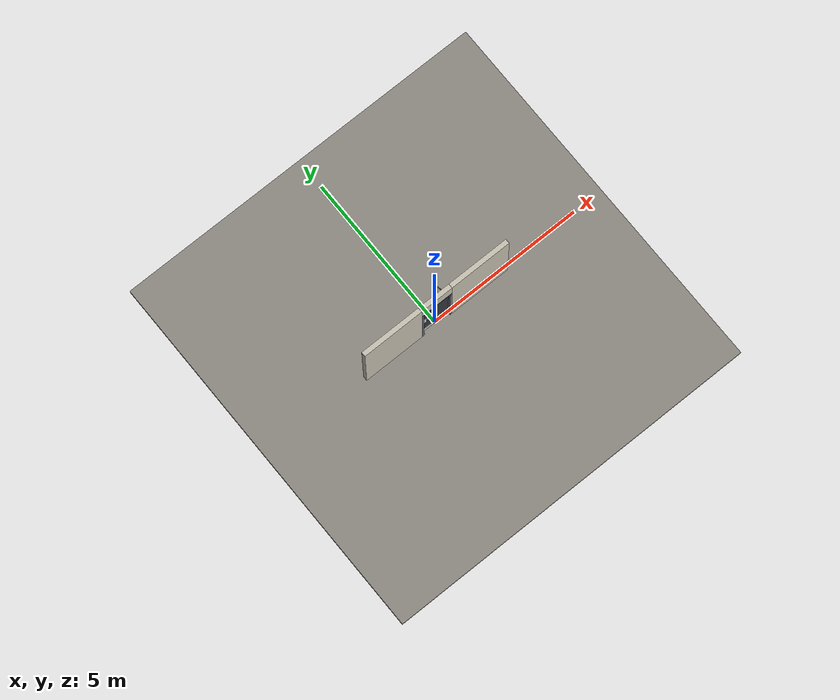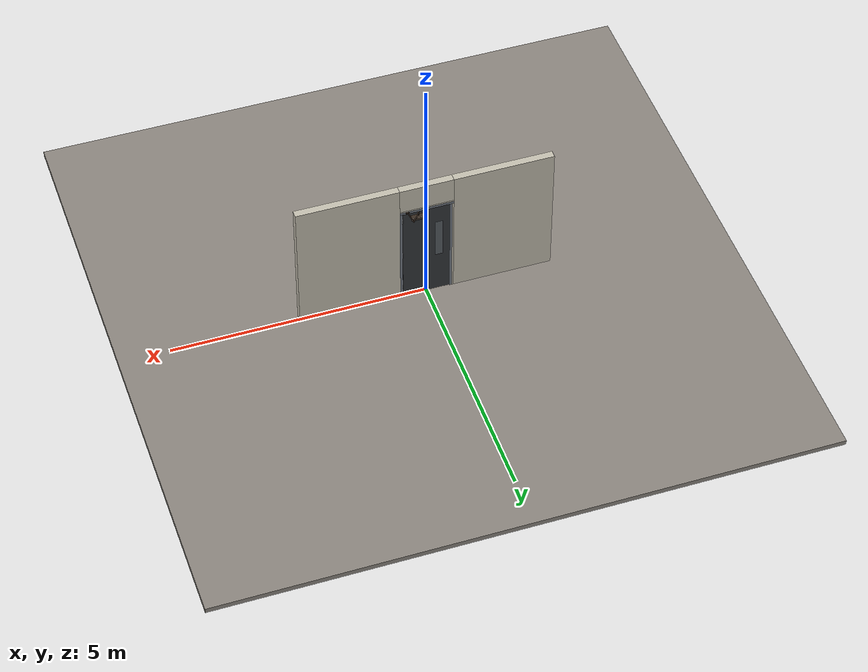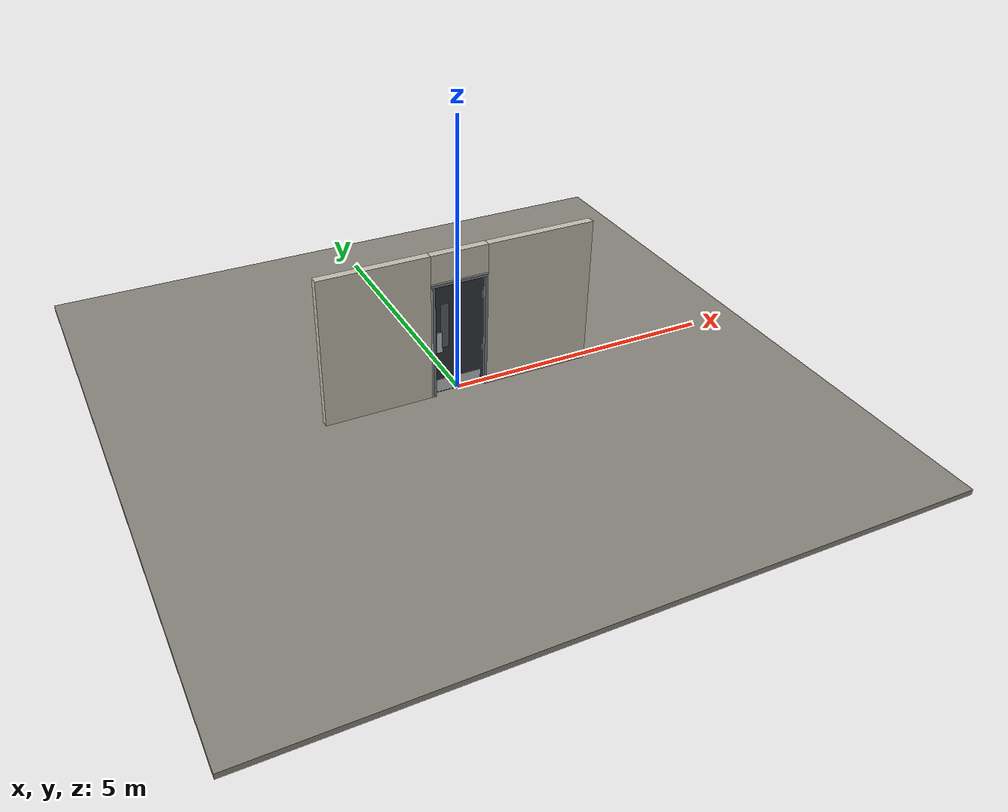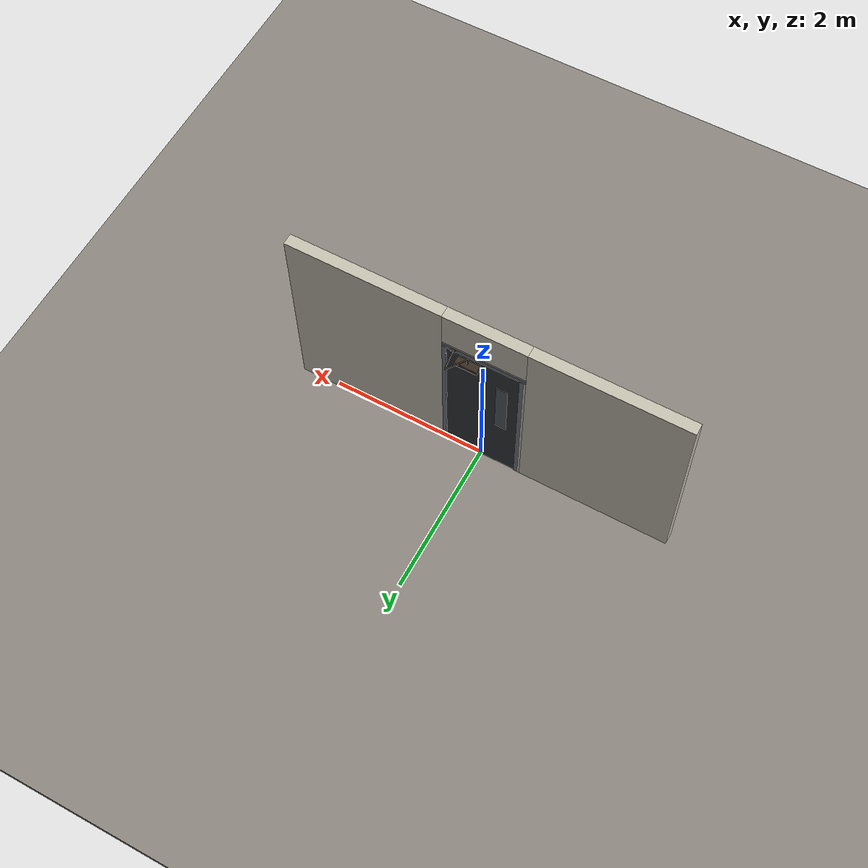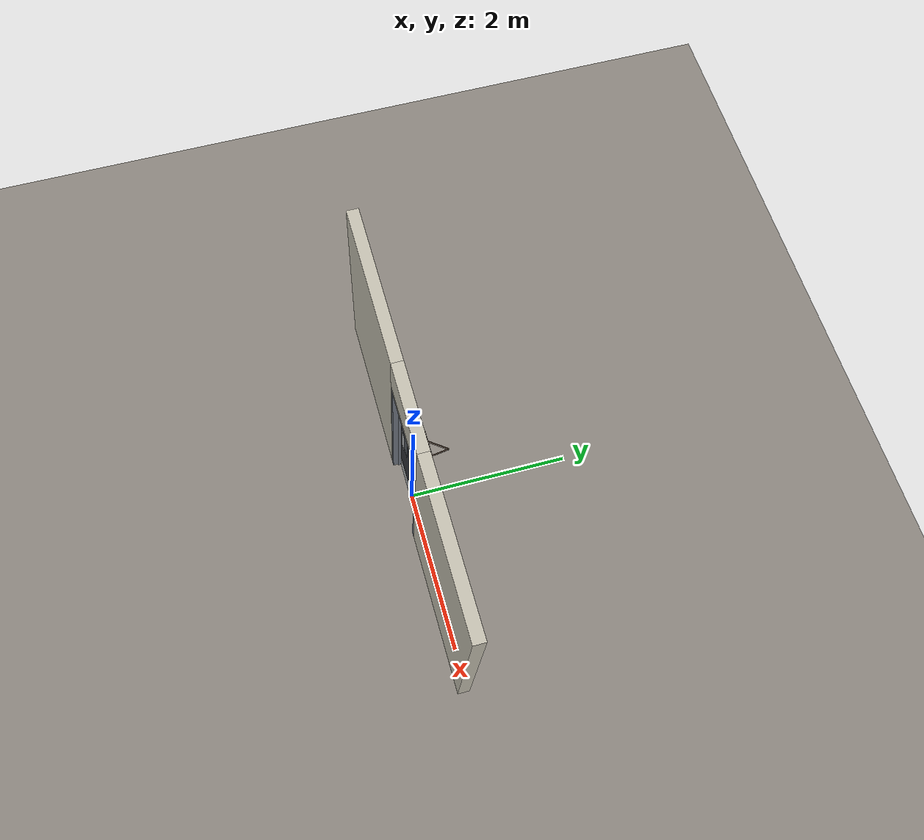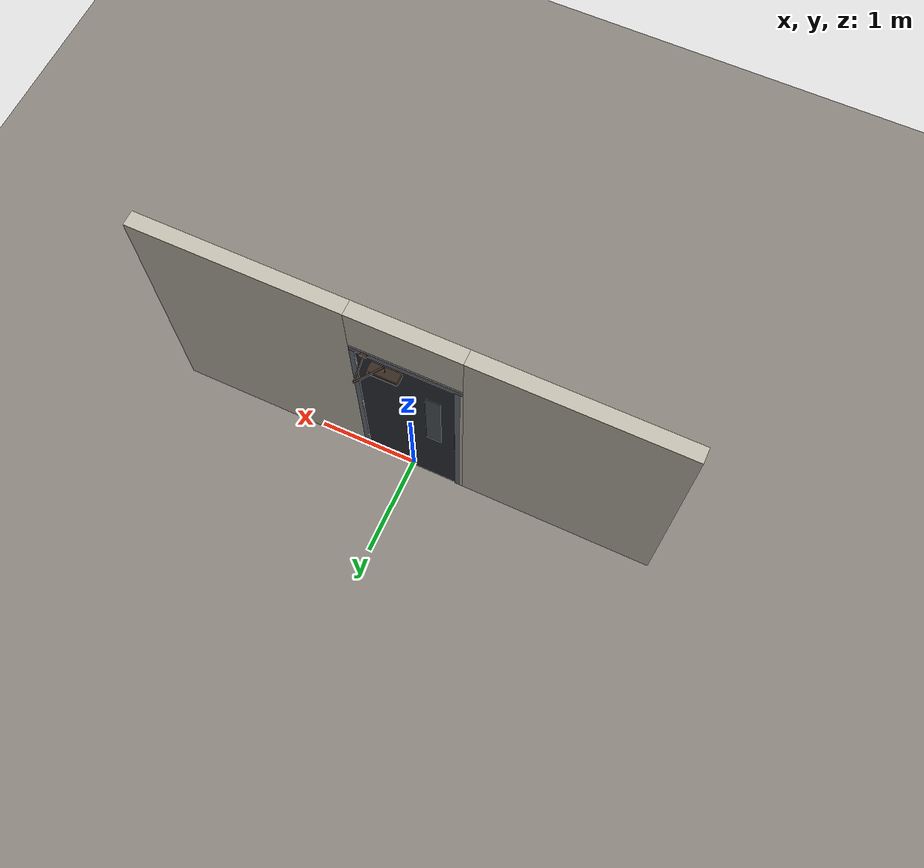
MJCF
<?xml version="1.0" ?>
<mujoco model="db0737_swing_single_full">
  <compiler angle="radian" meshdir="../../hardware" texturedir="../../textures" autolimits="true" inertiafromgeom="false"/>
  <option timestep="0.002" integrator="implicitfast" cone="elliptic" impratio="10" noslip_iterations="3">
    <flag multiccd="enable"/>
  </option>
  <size memory="16M"/>
  <default>
    <geom condim="4" solref="0.005 1" solimp="0.95 0.99 0.001"/>
    <joint solreflimit="0.005 1" solimplimit="0.95 0.99 0.001"/>
    <tendon solreflimit="0.005 1"/>
    <equality solref="0.002 1"/>
  </default>
  <visual>
    <headlight ambient="0.4 0.4 0.4" diffuse="0.7 0.7 0.7" specular="0.2 0.2 0.2"/>
    <quality shadowsize="4096"/>
    <map znear="0.01" zfar="60"/>
  </visual>
  <asset>
    <mesh name="closer_body_fdc4667657" file="closer_body_fdc4667657.obj"/>
    <mesh name="hinge_e22b26c0c1" file="hinge_e22b26c0c1.obj"/>
    <mesh name="hinge_jamb_e1d088f8dc" file="hinge_jamb_e1d088f8dc.obj"/>
    <material name="mat_floor" rgba="0.55 0.53 0.5 1" specular="0.2" shininess="0.15" reflectance="0"/>
    <material name="mat_wall" rgba="0.78 0.76 0.7 1" specular="0.2" shininess="0.1" reflectance="0"/>
    <material name="mat_leaf" rgba="0.2 0.21 0.23 1" specular="0.2" shininess="0.45" reflectance="0"/>
    <material name="mat_glass" rgba="0.85 0.92 0.95 0.25" specular="0.2" shininess="0.95" reflectance="0.1"/>
    <material name="mat_hinge" rgba="0.65 0.66 0.68 1" specular="0.74" shininess="0.5" reflectance="0.36"/>
    <material name="mat_op_stainless" rgba="0.75 0.76 0.77 1" specular="0.8" shininess="0.65" reflectance="0.4"/>
    <material name="mat_frame" rgba="0.45 0.48 0.52 1" specular="0.32" shininess="0.6" reflectance="0.08"/>
    <material name="mat_seal" rgba="0.1 0.1 0.1 1" specular="0.2" shininess="0.1" reflectance="0"/>
    <material name="mat_closer" rgba="0.22 0.17 0.13 1" specular="0.8" shininess="0.6" reflectance="0.4"/>
    <material name="mat_kick" rgba="0.75 0.76 0.77 1" specular="0.8" shininess="0.65" reflectance="0.4"/>
    <texture name="skybox" type="skybox" builtin="gradient" rgb1="0.6 0.7 0.85" rgb2="0.9 0.92 0.95" width="256" height="256"/>
  </asset>
  <worldbody>
    <light name="sun" pos="1.5 -2.5 4" dir="-0.3 0.5 -0.8" directional="true" diffuse="0.8 0.8 0.8" specular="0.3 0.3 0.3" castshadow="true"/>
    <light name="fill" pos="-1.5 2.5 3" dir="0.3 -0.5 -0.7" directional="true" diffuse="0.35 0.35 0.4" castshadow="false"/>
    <camera name="robot_view" pos="0 -2.681312 1.812087" xyaxes="1 0 0 0 0.26963 0.962964" fovy="52"/>
    <camera name="far_view" pos="0 2.594313 1.812087" xyaxes="-1 0 0 0 -0.26963 0.962964" fovy="52"/>
    <camera name="iso" pos="-2.004737 -2.259262 2.234138" xyaxes="0.741536 -0.670913 0 0.242917 0.268487 0.932151" fovy="46"/>
    <camera name="detail_handle" pos="-0.1735 -0.8435 1.296" xyaxes="0.97561 0.219512 0 -0.070934 0.315262 0.94635" fovy="38"/>
    <geom name="floor" type="box" size="6 6 0.05" pos="0 0 -0.05" material="mat_floor" group="0" contype="1" conaffinity="1" friction="0.8 0.005 0.0001" density="2400"/>
    <geom name="wall_left" type="box" size="0.97975 0.0725 1.3735" pos="-1.52025 -0.0435 1.3735" material="mat_wall" group="0" contype="1" conaffinity="1" friction="0.6 0.005 0.0001" density="800"/>
    <geom name="wall_right" type="box" size="0.99475 0.0725 1.3735" pos="1.50525 -0.0435 1.3735" material="mat_wall" group="0" contype="1" conaffinity="1" friction="0.6 0.005 0.0001" density="800"/>
    <geom name="wall_header" type="box" size="0.5255 0.0725 0.26" pos="-0.015 -0.0435 2.487" material="mat_wall" group="0" contype="1" conaffinity="1" friction="0.6 0.005 0.0001" density="800"/>
    <geom name="hinge_0_jamb" type="mesh" mesh="hinge_jamb_e1d088f8dc" pos="0.4575 0.029 0.259" quat="0 0 0 1" material="mat_hinge" group="1" contype="0" conaffinity="0" density="7850"/>
    <geom name="hinge_1_jamb" type="mesh" mesh="hinge_jamb_e1d088f8dc" pos="0.4575 0.029 1.076" quat="0 0 0 1" material="mat_hinge" group="1" contype="0" conaffinity="0" density="7850"/>
    <geom name="hinge_2_jamb" type="mesh" mesh="hinge_jamb_e1d088f8dc" pos="0.4575 0.029 1.963" quat="0 0 0 1" material="mat_hinge" group="1" contype="0" conaffinity="0" density="7850"/>
    <geom name="jamb_hinge" type="box" size="0.025 0.0725 1.0735" pos="0.4855 -0.0435 1.0735" material="mat_frame" group="0" contype="1" conaffinity="1" friction="0.6 0.005 0.0001" density="300"/>
    <geom name="jamb_strike" type="box" size="0.025 0.0725 1.0735" pos="-0.4855 -0.0435 1.0735" material="mat_frame" group="0" contype="1" conaffinity="1" friction="0.6 0.005 0.0001" density="300"/>
    <geom name="stud_strike" type="box" size="0.015 0.0725 1.0735" pos="-0.5255 -0.0435 1.0735" material="mat_wall" group="0" contype="1" conaffinity="1" friction="0.6 0.005 0.0001" density="500"/>
    <geom name="jamb_head" type="box" size="0.5255 0.0725 0.025" pos="-0.015 -0.0435 2.172" material="mat_frame" group="0" contype="1" conaffinity="1" friction="0.6 0.005 0.0001" density="300"/>
    <geom name="head_stud" type="box" size="0.5255 0.0725 0.015" pos="-0.015 -0.0435 2.212" material="mat_wall" group="0" contype="1" conaffinity="1" friction="0.6 0.005 0.0001" density="500"/>
    <geom name="stop_hinge" type="box" size="0.0055 0.016 1.0735" pos="0.455 -0.0385 1.0735" material="mat_frame" group="0" contype="1" conaffinity="1" friction="0.6 0.005 0.0001" density="300"/>
    <geom name="stop_strike" type="box" size="0.0055 0.016 1.0735" pos="-0.455 -0.0385 1.0735" material="mat_frame" group="0" contype="1" conaffinity="1" friction="0.6 0.005 0.0001" density="300"/>
    <geom name="stop_head" type="box" size="0.4605 0.016 0.0055" pos="0 -0.0385 2.1415" material="mat_frame" group="0" contype="1" conaffinity="1" friction="0.6 0.005 0.0001" density="300"/>
    <geom name="seal_hinge" type="box" size="0.004 0.002 1.0735" pos="0.4575 -0.024 1.0735" material="mat_seal" group="1" contype="0" conaffinity="0" density="1100"/>
    <geom name="seal_strike" type="box" size="0.004 0.002 1.0735" pos="-0.4575 -0.024 1.0735" material="mat_seal" group="1" contype="0" conaffinity="0" density="1100"/>
    <geom name="seal_head" type="box" size="0.4405 0.002 0.008" pos="0 -0.024 2.135" material="mat_seal" group="1" contype="0" conaffinity="0" density="1100"/>
    <geom name="closer_bracket" type="box" size="0.03 0.012 0.014" pos="0.3605 0.041 2.177" material="mat_closer" group="1" contype="0" conaffinity="0" density="2700"/>
    <site name="approach_point" pos="0 -1.5 0" quat="1 0 0 0" size="0.05" rgba="0.2 0.9 0.2 0.5" group="4"/>
    <site name="goal_point" pos="0 1.5 0" quat="1 0 0 0" size="0.05" rgba="0.2 0.9 0.2 0.5" group="4"/>
    <site name="door_plane_center" pos="0 0 1.0735" quat="1 0 0 0" size="0.02" rgba="0.2 0.9 0.2 0.5" group="4"/>
    <body name="leaf" pos="0.4605 0 0">
      <inertial pos="-0.424852 0.014021 1.242547" mass="60.502958" quat="0.514079 -0.516637 -0.49582 -0.472197" diaginertia="3.71356217 29.712238427 33.327014291"/>
      <joint name="leaf_hinge" type="hinge" axis="0 0 -1" pos="-0.003 0.029 0" limited="true" range="0 1.745329" solreflimit="0.02 1" damping="12.268966" frictionloss="0.678789" stiffness="15.342537" springref="-1.864099" armature="0.02"/>
      <geom name="leaf_slab" type="box" size="0.457 0.022 1.067" pos="-0.46 0 1.076" material="mat_leaf" group="0" contype="1" conaffinity="1" friction="0.4 0.005 0.0001" density="1"/>
      <geom name="leaf_glass_0" type="box" size="0.075 0.0228 0.4268" pos="-0.71146 0 1.33208" material="mat_glass" group="1" contype="0" conaffinity="0" density="1"/>
      <geom name="hinge_0" type="mesh" mesh="hinge_e22b26c0c1" pos="-0.003 0.029 0.259" quat="0 0 0 1" material="mat_hinge" group="1" contype="0" conaffinity="0" density="7850"/>
      <geom name="hinge_1" type="mesh" mesh="hinge_e22b26c0c1" pos="-0.003 0.029 1.076" quat="0 0 0 1" material="mat_hinge" group="1" contype="0" conaffinity="0" density="7850"/>
      <geom name="hinge_2" type="mesh" mesh="hinge_e22b26c0c1" pos="-0.003 0.029 1.963" quat="0 0 0 1" material="mat_hinge" group="1" contype="0" conaffinity="0" density="7850"/>
      <geom name="leaf_push_plate_n" type="box" size="0.05 0.0008 0.2" pos="-0.812 -0.0228 1.016" material="mat_op_stainless" group="1" contype="0" conaffinity="0" density="7900"/>
      <geom name="closer_body" type="mesh" mesh="closer_body_fdc4667657" pos="-0.3 0.022 2.054" quat="0 0 0.707107 0.707107" material="mat_closer" group="1" contype="0" conaffinity="0" density="2000"/>
      <geom name="closer_body_col" type="box" size="0.145 0.05 0.035" pos="-0.3 0.072 2.054" material="mat_closer" group="3" contype="1" conaffinity="1" rgba="0.8 0.3 0.3 0.25" friction="0.6 0.005 0.0001" density="2000"/>
      <geom name="closer_pinion_shaft" type="cylinder" size="0.008 0.0615" pos="-0.3 0.072 2.1155" material="mat_closer" group="1" contype="0" conaffinity="0" density="2700"/>
      <geom name="kick_plate_n" type="box" size="0.427 0.0008 0.125" pos="-0.46 -0.0228 0.144" material="mat_kick" group="2" contype="0" conaffinity="0" density="7900"/>
      <site name="leaf_push_plate_push_n" pos="-0.812 -0.022 1.016" quat="1 0 0 0" size="0.012" rgba="0.2 0.9 0.2 0.5" group="4"/>
      <site name="leaf_edge_mid" pos="-0.917 0 1.067" quat="1 0 0 0" size="0.02" rgba="0.2 0.9 0.2 0.5" group="4"/>
      <body name="closer_arm_main" pos="-0.3 0.072 2.177" quat="0.890947 0 0 0.454107">
        <inertial pos="0.14 0 0" mass="0.12096" quat="1 0 0 0" diaginertia="0.000003588 0.00079128 0.000792852"/>
        <joint name="closer_pinion" type="hinge" axis="0 0 1" limited="false" damping="0.01" armature="0.002"/>
        <geom name="closer_arm_main_geom" type="box" size="0.14 0.008 0.005" pos="0.14 0 0" material="mat_closer" group="1" contype="0" conaffinity="0" density="2700"/>
        <body name="closer_arm_fore" pos="0.28 0 0" quat="0.373215 0 0 -0.927745">
          <inertial pos="0.128088 0 0" mass="0.076531" quat="1 0 0 0" diaginertia="0.000001771 0.000437665 0.000438201"/>
          <joint name="closer_elbow" type="hinge" axis="0 0 1" limited="false" damping="0.01" armature="0.002"/>
          <geom name="closer_arm_fore_geom" type="box" size="0.1125 0.007 0.004" pos="0.1125 0 0" material="mat_closer" group="1" contype="0" conaffinity="0" density="2700"/>
          <geom name="closer_fore_neck" type="box" size="0.0175 0.003 0.003" pos="0.2425 0 0" material="mat_closer" group="1" contype="0" conaffinity="0" density="2700"/>
          <geom name="closer_fore_pivot" type="cylinder" size="0.005 0.012" pos="0.26 0 0" material="mat_closer" group="1" contype="0" conaffinity="0" density="2700"/>
        </body>
      </body>
    </body>
  </worldbody>
  <equality>
    <connect name="closer_arm_connect" body1="closer_arm_fore" body2="world" anchor="0.26 0 0" active="true"/>
  </equality>
  <contact>
    <exclude body1="closer_arm_main" body2="leaf"/>
    <exclude body1="closer_arm_fore" body2="leaf"/>
    <exclude body1="closer_arm_main" body2="closer_arm_fore"/>
  </contact>
  <sensor>
    <jointpos name="leaf_hinge_pos" joint="leaf_hinge"/>
    <jointvel name="leaf_hinge_vel" joint="leaf_hinge"/>
  </sensor>
</mujoco>
